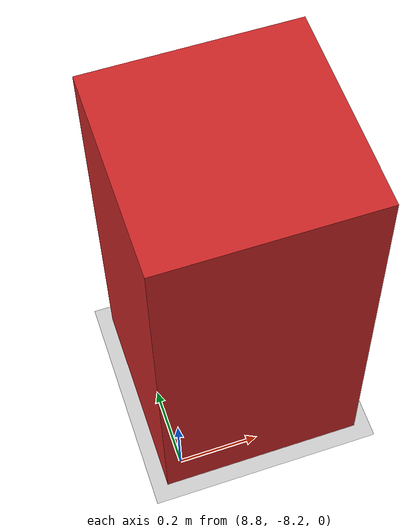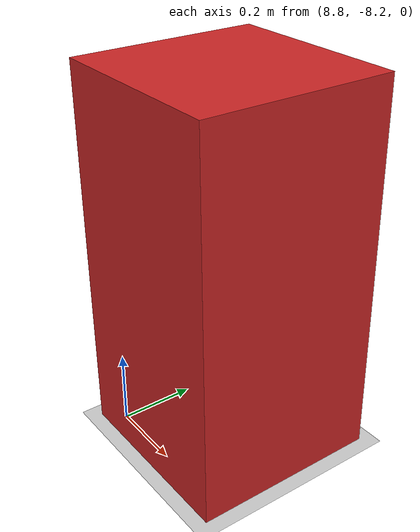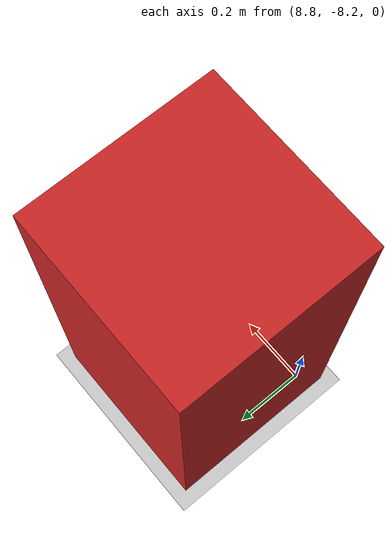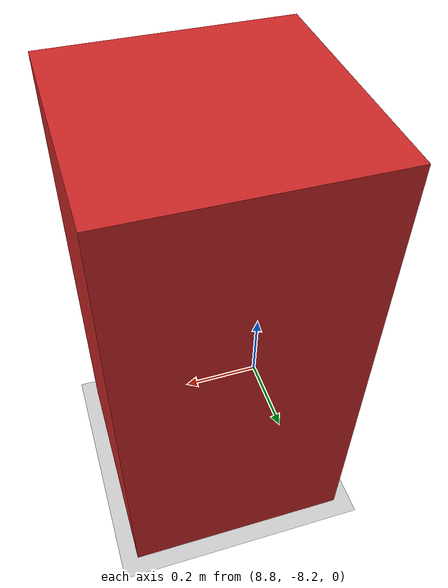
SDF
<sdf version='1.6'>
  <world name='default'>

    <light name='sun' type='directional'>
      <cast_shadows>1</cast_shadows>
      <pose frame=''>0 0 10 0 -0 0</pose>
      <diffuse>0.8 0.8 0.8 1</diffuse>
      <specular>0.2 0.2 0.2 1</specular>
      <attenuation>
        <range>1000</range>
        <constant>0.9</constant>
        <linear>0.01</linear>
        <quadratic>0.001</quadratic>
      </attenuation>
      <direction>-0.5 0.1 -0.9</direction>
    </light>

    <plugin name='gazebo_occupancy_map' filename='libgazebo_2Dmap_plugin.so'>
      <map_resolution>.5</map_resolution> <!-- in meters, optional, default 0.1 -->
      <map_height>20.0</map_height>         <!-- in meters, optional, default 0.3 -->
      <map_size_x>200</map_size_x>          <!-- in meters, optional, default 10 -->
      <map_size_y>200</map_size_y>          <!-- in meters, optional, default 10 -->
      <init_robot_x>0</init_robot_x>          <!-- x coordinate in meters, optional, default 0 -->
      <init_robot_y>0</init_robot_y>          <!-- y coordinate in meters, optional, default 0 -->
    </plugin>

    <model name='ground_plane'>
      <static>1</static>
      <link name='link'>
        <collision name='collision'>
          <geometry>
            <plane>
              <normal>0 0 1</normal>
              <size>100 100</size>
            </plane>
          </geometry>
          <surface>
            <contact>
              <collide_bitmask>65535</collide_bitmask>
              <ode/>
            </contact>
            <friction>
              <ode>
                <mu>100</mu>
                <mu2>50</mu2>
              </ode>
              <torsional>
                <ode/>
              </torsional>
            </friction>
            <bounce/>
          </surface>
          <max_contacts>10</max_contacts>
        </collision>
        <visual name='visual'>
          <cast_shadows>0</cast_shadows>
          <geometry>
            <plane>
              <normal>0 0 1</normal>
              <size>100 100</size>
            </plane>
          </geometry>
          <material>
            <script>
              <uri>file://media/materials/scripts/gazebo.material</uri>
              <name>Gazebo/Grey</name>
            </script>
          </material>
        </visual>
        <self_collide>0</self_collide>
        <enable_wind>0</enable_wind>
        <kinematic>0</kinematic>
      </link>
    </model>
    <gravity>0 0 -9.8</gravity>
    <magnetic_field>6e-06 2.3e-05 -4.2e-05</magnetic_field>
    <atmosphere type='adiabatic'/>
    <physics name='default_physics' default='0' type='ode'>
      <max_step_size>0.001</max_step_size>
      <real_time_factor>1</real_time_factor>
      <real_time_update_rate>1000</real_time_update_rate>
    </physics>
    <scene>
      <ambient>0.4 0.4 0.4 1</ambient>
      <background>0.7 0.7 0.7 1</background>
      <shadows>1</shadows>
    </scene>
    <audio>
      <device>default</device>
    </audio>
    <wind/>
    <spherical_coordinates>
      <surface_model>EARTH_WGS84</surface_model>
      <latitude_deg>0</latitude_deg>
      <longitude_deg>0</longitude_deg>
      <elevation>0</elevation>
      <heading_deg>0</heading_deg>
    </spherical_coordinates>

    <model name="box">
      <pose>9 -8 0.5 0 0 0</pose>
    <link name="link">
      <inertial>
        <pose>0 0 0 0 0 0</pose>
        <mass>100</mass>
        <inertia>
          <ixx>3.33341666667e+3</ixx>
          <ixy>0.0</ixy>
          <ixz>0.0</ixz>
          <iyy>3.33341666667e+3</iyy>
          <iyz>0.0</iyz>
          <izz>6.66666666667e+3</izz>
        </inertia>
      </inertial>
      <collision name="collision">
        <geometry>
          <box>
            <size>0.5 0.5 1.0</size>
          </box>
        </geometry>
        <surface>
            <friction>
              <ode>
                <mu>0</mu>
                <mu2>0</mu2>
              </ode>
            </friction>
          </surface>
      </collision>

      <visual name="visual">
        <geometry>
          <box>
            <size>0.5 0.5 1.0</size>
          </box>
        </geometry>
        <material>
            <script>
              <uri>file://media/materials/scripts/gazebo.material</uri>
              <name>Gazebo/Red</name>
            </script>
          </material>
      </visual>
    </link>
    <plugin name="plannar_mover_plugin" filename="libplannar_mover_plugin.so">
      <topic_name>test_case_topic_name</topic_name>
    </plugin>
  </model>

  </world>
</sdf>
